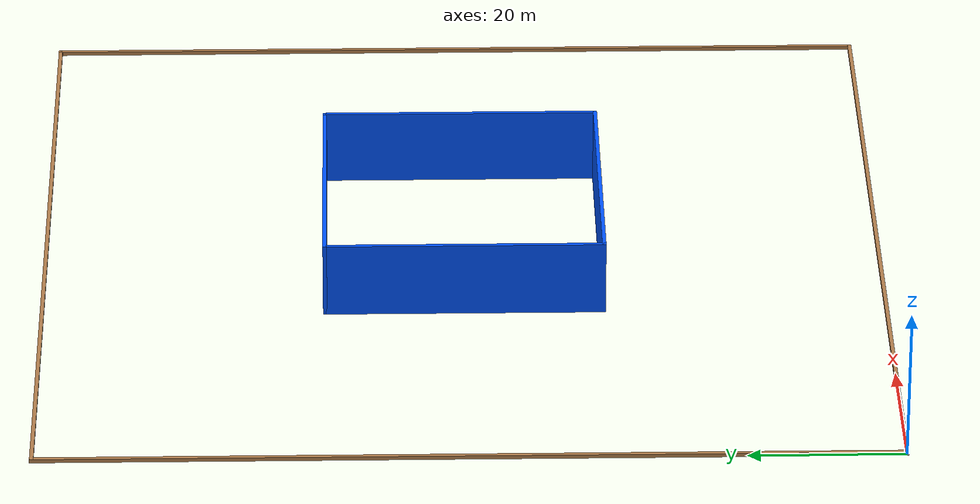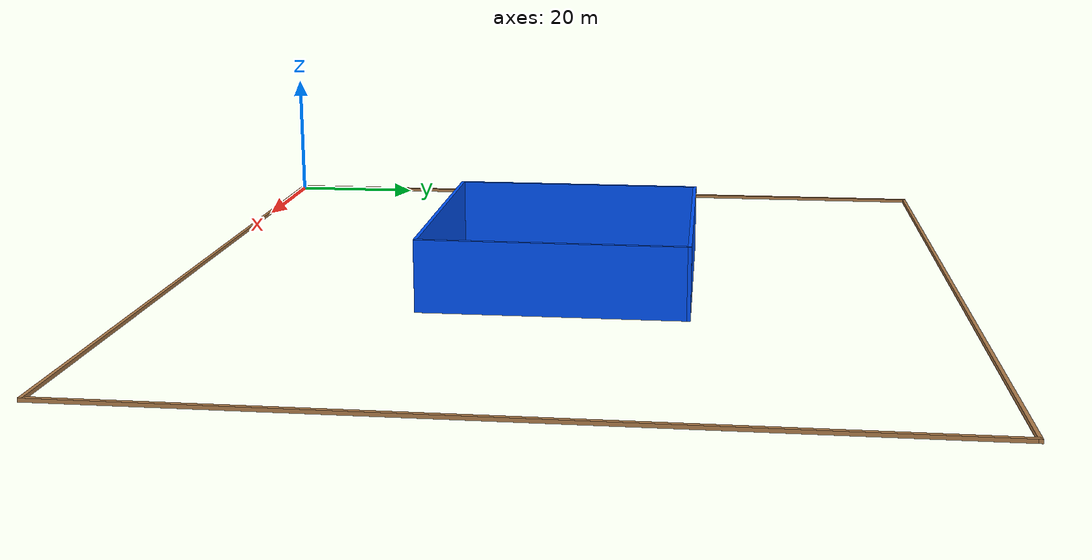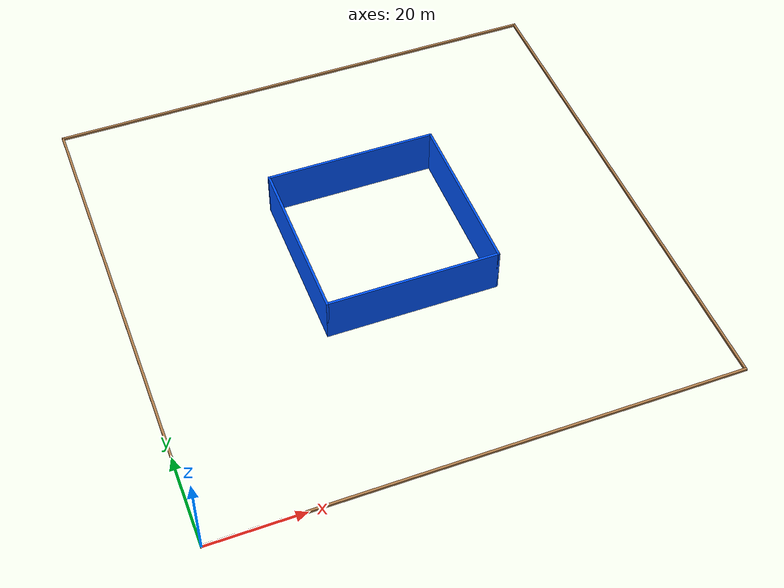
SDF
<?xml version='1.0'?>
<sdf version='1.6'>
  <model name='FlyField3'>
    <pose frame=''>54.75 54.75 0 0 -0 0</pose>
    <link name='Wall_0'>
      <collision name='Wall_0_Collision'>
        <geometry>
          <box>
            <size>0.5 0.5 0.5</size>
          </box>
        </geometry>
        <pose frame=''>0 0 0.25 0 -0 0</pose>
      </collision>
      <visual name='Wall_0_Visual'>
        <pose frame=''>0 0 0.25 0 -0 0</pose>
        <geometry>
          <box>
            <size>0.5 0.5 0.5</size>
          </box>
        </geometry>
        <material>
          <script>
            <uri>file://media/materials/scripts/gazebo.material</uri>
            <name>Gazebo/Grey</name>
          </script>
          <ambient>1 1 1 1</ambient>
        </material>
        <meta>
          <layer>0</layer>
        </meta>
      </visual>
      <pose frame=''>-54.75 -54.75 0 0 -0 0</pose>
    </link>
    <link name='Wall_19'>
      <collision name='Wall_19_Collision'>
        <geometry>
          <box>
            <size>110 0.5 0.5</size>
          </box>
        </geometry>
        <pose frame=''>0 0 0.25 0 -0 0</pose>
      </collision>
      <visual name='Wall_19_Visual'>
        <pose frame=''>0 0 0.25 0 -0 0</pose>
        <geometry>
          <box>
            <size>110 0.5 0.5</size>
          </box>
        </geometry>
        <material>
          <script>
            <uri>file://media/materials/scripts/gazebo.material</uri>
            <name>Gazebo/Wood</name>
          </script>
          <ambient>1 1 1 1</ambient>
        </material>
        <meta>
          <layer>0</layer>
        </meta>
      </visual>
      <pose frame=''>-54.75 0 0 0 -0 1.5708</pose>
    </link>
    <link name='Wall_21'>
      <collision name='Wall_21_Collision'>
        <geometry>
          <box>
            <size>36.6 0.5 10</size>
          </box>
        </geometry>
        <pose frame=''>0 0 5 0 -0 0</pose>
      </collision>
      <visual name='Wall_21_Visual'>
        <pose frame=''>0 0 5 0 -0 0</pose>
        <geometry>
          <box>
            <size>36.6 0.5 10</size>
          </box>
        </geometry>
        <material>
          <script>
            <uri>file://media/materials/scripts/gazebo.material</uri>
            <name>Gazebo/Grey</name>
          </script>
          <ambient>0 0.333333 1 1</ambient>
        </material>
        <meta>
          <layer>0</layer>
        </meta>
      </visual>
      <pose frame=''>-1e-06 18.05 0 0 -0 3.14159</pose>
    </link>
    <link name='Wall_23'>
      <collision name='Wall_23_Collision'>
        <geometry>
          <box>
            <size>36.6 0.5 10</size>
          </box>
        </geometry>
        <pose frame=''>0 0 5 0 -0 0</pose>
      </collision>
      <visual name='Wall_23_Visual'>
        <pose frame=''>0 0 5 0 -0 0</pose>
        <geometry>
          <box>
            <size>36.6 0.5 10</size>
          </box>
        </geometry>
        <material>
          <script>
            <uri>file://media/materials/scripts/gazebo.material</uri>
            <name>Gazebo/Grey</name>
          </script>
          <ambient>0 0.333333 1 1</ambient>
        </material>
        <meta>
          <layer>0</layer>
        </meta>
      </visual>
      <pose frame=''>18.05 0 0 0 -0 1.5708</pose>
    </link>
    <link name='Wall_25'>
      <collision name='Wall_25_Collision'>
        <geometry>
          <box>
            <size>36.6 0.5 10</size>
          </box>
        </geometry>
        <pose frame=''>0 0 5 0 -0 0</pose>
      </collision>
      <visual name='Wall_25_Visual'>
        <pose frame=''>0 0 5 0 -0 0</pose>
        <geometry>
          <box>
            <size>36.6 0.5 10</size>
          </box>
        </geometry>
        <material>
          <script>
            <uri>file://media/materials/scripts/gazebo.material</uri>
            <name>Gazebo/Grey</name>
          </script>
          <ambient>0 0.333333 1 1</ambient>
        </material>
        <meta>
          <layer>0</layer>
        </meta>
      </visual>
      <pose frame=''>-1e-06 -18.05 0 0 -0 0</pose>
    </link>
    <link name='Wall_27'>
      <collision name='Wall_27_Collision'>
        <geometry>
          <box>
            <size>36.6 0.5 10</size>
          </box>
        </geometry>
        <pose frame=''>0 0 5 0 -0 0</pose>
      </collision>
      <visual name='Wall_27_Visual'>
        <pose frame=''>0 0 5 0 -0 0</pose>
        <geometry>
          <box>
            <size>36.6 0.5 10</size>
          </box>
        </geometry>
        <material>
          <script>
            <uri>file://media/materials/scripts/gazebo.material</uri>
            <name>Gazebo/Grey</name>
          </script>
          <ambient>0 0.333333 1 1</ambient>
        </material>
        <meta>
          <layer>0</layer>
        </meta>
      </visual>
      <pose frame=''>-18.05 0 0 0 0 -1.5708</pose>
    </link>
    <link name='Wall_5'>
      <collision name='Wall_5_Collision'>
        <geometry>
          <box>
            <size>110 0.5 0.5</size>
          </box>
        </geometry>
        <pose frame=''>0 0 0.25 0 -0 0</pose>
      </collision>
      <visual name='Wall_5_Visual'>
        <pose frame=''>0 0 0.25 0 -0 0</pose>
        <geometry>
          <box>
            <size>110 0.5 0.5</size>
          </box>
        </geometry>
        <material>
          <script>
            <uri>file://media/materials/scripts/gazebo.material</uri>
            <name>Gazebo/Wood</name>
          </script>
          <ambient>1 1 1 1</ambient>
        </material>
        <meta>
          <layer>0</layer>
        </meta>
      </visual>
      <pose frame=''>-1e-06 -54.75 0 0 -0 0</pose>
    </link>
    <link name='Wall_6'>
      <collision name='Wall_6_Collision'>
        <geometry>
          <box>
            <size>110 0.5 0.5</size>
          </box>
        </geometry>
        <pose frame=''>0 0 0.25 0 -0 0</pose>
      </collision>
      <visual name='Wall_6_Visual'>
        <pose frame=''>0 0 0.25 0 -0 0</pose>
        <geometry>
          <box>
            <size>110 0.5 0.5</size>
          </box>
        </geometry>
        <material>
          <script>
            <uri>file://media/materials/scripts/gazebo.material</uri>
            <name>Gazebo/Wood</name>
          </script>
          <ambient>1 1 1 1</ambient>
        </material>
        <meta>
          <layer>0</layer>
        </meta>
      </visual>
      <pose frame=''>54.75 0 0 0 -0 1.5708</pose>
    </link>
    <link name='Wall_7'>
      <collision name='Wall_7_Collision'>
        <geometry>
          <box>
            <size>110 0.5 0.5</size>
          </box>
        </geometry>
        <pose frame=''>0 0 0.25 0 -0 0</pose>
      </collision>
      <visual name='Wall_7_Visual'>
        <pose frame=''>0 0 0.25 0 -0 0</pose>
        <geometry>
          <box>
            <size>110 0.5 0.5</size>
          </box>
        </geometry>
        <material>
          <script>
            <uri>file://media/materials/scripts/gazebo.material</uri>
            <name>Gazebo/Wood</name>
          </script>
          <ambient>0.921569 0.807843 0.615686 1</ambient>
        </material>
        <meta>
          <layer>0</layer>
        </meta>
      </visual>
      <pose frame=''>-1e-06 54.75 0 0 -0 3.14159</pose>
    </link>
    <static>1</static>
  </model>
</sdf>
